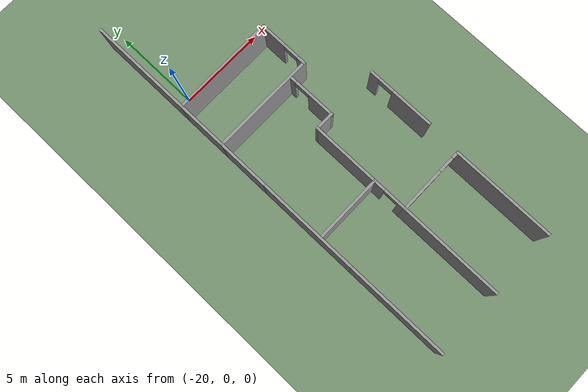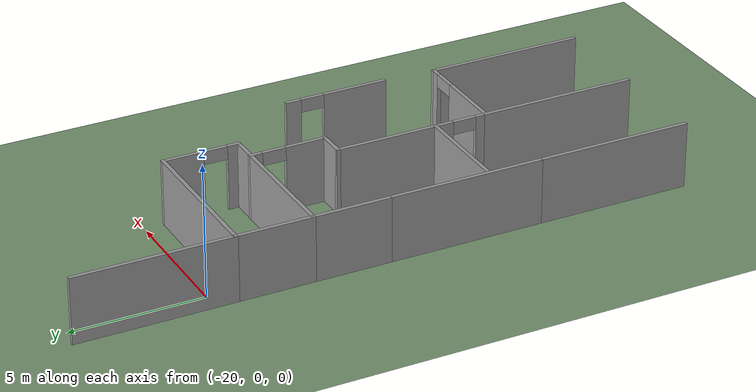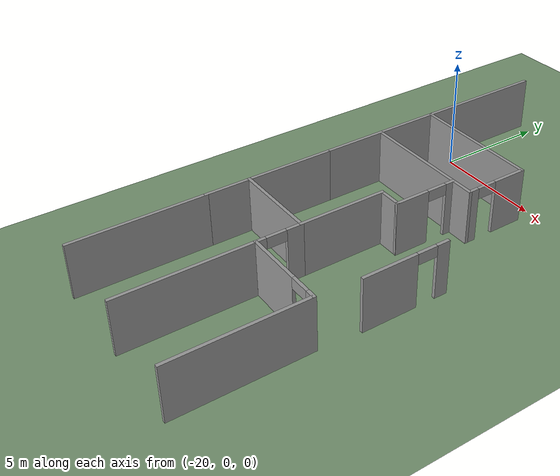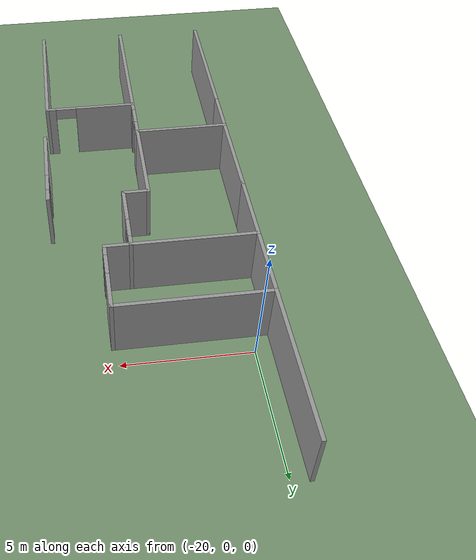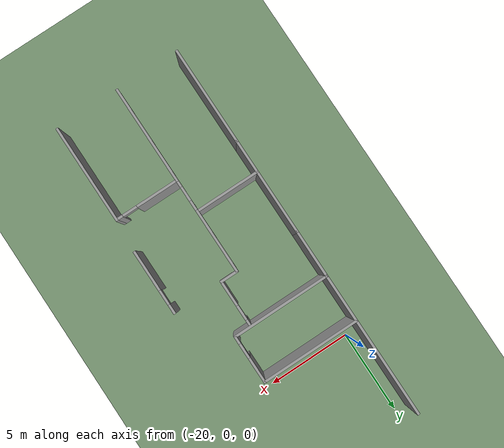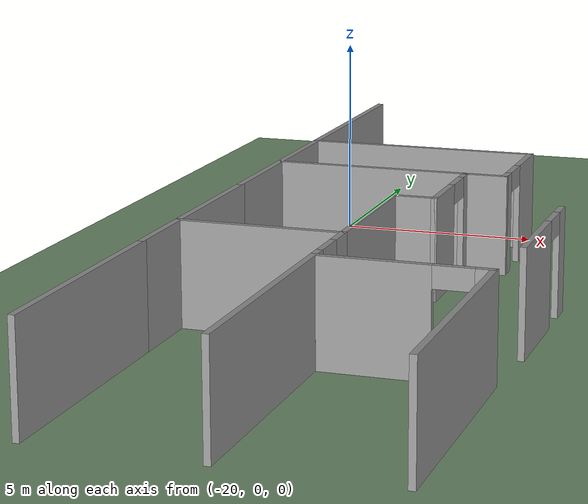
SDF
<sdf version="1.7">
 <world name="default">
  <model name="ground_plane">
   <static>1</static>
   <link name="link">
    <collision name="collision">
     <geometry><plane><normal>0 0 1</normal><size>600 600</size></plane></geometry>
     <surface>
      <contact><collide_bitmask>65535</collide_bitmask></contact>
      <friction><ode><mu>100</mu><mu2>50</mu2></ode></friction>
     </surface>
    </collision>
    <visual name="visual">
     <cast_shadows>0</cast_shadows>
     <geometry><plane><normal>0 0 1</normal><size>100 100</size></plane></geometry>
     <material><ambient>0.45 0.57 0.43 1</ambient><diffuse>0.45 0.57 0.43 1</diffuse></material>
    </visual>
   </link>
  </model>
  <model name="myhal_V3_2">
   <link name="Wall_345">
    <pose>-20.475 0 0 0 0 -1.5708</pose>
    <visual name="Wall_345_Visual">
     <pose>0 0 1.25 0 -0 0</pose>
     <geometry><box><size>6 0.15 2.5</size></box></geometry>
     <material>
      <script><uri>file://media/materials/scripts/gazebo.material</uri><name>Gazebo/Grey</name></script>
      <ambient>1 1 1 1</ambient>
      <shader type="pixel"/>
     </material>
     <meta><layer>0</layer></meta>
    </visual>
    <collision name="Wall_345_Collision">
     <pose>0 0 1.25 0 -0 0</pose>
     <geometry><box><size>6 0.15 2.5</size></box></geometry>
     <surface>
      <friction>
       <ode><mu>1</mu><mu2>1</mu2><fdir1>0 0 0</fdir1><slip1>0</slip1><slip2>0</slip2></ode>
       <torsional>
        <coefficient>1</coefficient>
        <patch_radius>0</patch_radius>
        <surface_radius>0</surface_radius>
        <use_patch_radius>1</use_patch_radius>
        <ode><slip>0</slip></ode>
       </torsional>
      </friction>
      <bounce><restitution_coefficient>0</restitution_coefficient><threshold>1e+06</threshold></bounce>
      <contact>
       <collide_without_contact>0</collide_without_contact>
       <collide_without_contact_bitmask>1</collide_without_contact_bitmask>
       <collide_bitmask>1</collide_bitmask>
       <ode>
        <soft_cfm>0</soft_cfm>
        <soft_erp>0.2</soft_erp>
        <kp>1e+13</kp>
        <kd>1</kd>
        <max_vel>0.01</max_vel>
        <min_depth>0</min_depth>
       </ode>
       <bullet>
        <split_impulse>1</split_impulse>
        <split_impulse_penetration_threshold>-0.01</split_impulse_penetration_threshold>
        <soft_cfm>0</soft_cfm>
        <soft_erp>0.2</soft_erp>
        <kp>1e+13</kp>
        <kd>1</kd>
       </bullet>
      </contact>
     </surface>
    </collision>
   </link>
   <link name="Wall_347">
    <pose>-20.475 -4.35 0 0 0 -1.5708</pose>
    <visual name="Wall_347_Visual">
     <pose>0 0 1.25 0 -0 0</pose>
     <geometry><box><size>3 0.15 2.5</size></box></geometry>
     <material>
      <script><uri>file://media/materials/scripts/gazebo.material</uri><name>Gazebo/Grey</name></script>
      <ambient>1 1 1 1</ambient>
      <shader type="pixel"/>
     </material>
     <meta><layer>0</layer></meta>
    </visual>
    <collision name="Wall_347_Collision">
     <pose>0 0 1.25 0 -0 0</pose>
     <geometry><box><size>3 0.15 2.5</size></box></geometry>
     <surface>
      <friction>
       <ode><mu>1</mu><mu2>1</mu2><fdir1>0 0 0</fdir1><slip1>0</slip1><slip2>0</slip2></ode>
       <torsional>
        <coefficient>1</coefficient>
        <patch_radius>0</patch_radius>
        <surface_radius>0</surface_radius>
        <use_patch_radius>1</use_patch_radius>
        <ode><slip>0</slip></ode>
       </torsional>
      </friction>
      <bounce><restitution_coefficient>0</restitution_coefficient><threshold>1e+06</threshold></bounce>
      <contact>
       <collide_without_contact>0</collide_without_contact>
       <collide_without_contact_bitmask>1</collide_without_contact_bitmask>
       <collide_bitmask>1</collide_bitmask>
       <ode>
        <soft_cfm>0</soft_cfm>
        <soft_erp>0.2</soft_erp>
        <kp>1e+13</kp>
        <kd>1</kd>
        <max_vel>0.01</max_vel>
        <min_depth>0</min_depth>
       </ode>
       <bullet>
        <split_impulse>1</split_impulse>
        <split_impulse_penetration_threshold>-0.01</split_impulse_penetration_threshold>
        <soft_cfm>0</soft_cfm>
        <soft_erp>0.2</soft_erp>
        <kp>1e+13</kp>
        <kd>1</kd>
       </bullet>
      </contact>
     </surface>
    </collision>
   </link>
   <link name="Wall_348">
    <pose>-20.475 -7.2 0 0 0 -1.5708</pose>
    <visual name="Wall_348_Visual">
     <pose>0 0 1.25 0 -0 0</pose>
     <geometry><box><size>3 0.15 2.5</size></box></geometry>
     <material>
      <script><uri>file://media/materials/scripts/gazebo.material</uri><name>Gazebo/Grey</name></script>
      <ambient>1 1 1 1</ambient>
      <shader type="pixel"/>
     </material>
     <meta><layer>0</layer></meta>
    </visual>
    <collision name="Wall_348_Collision">
     <pose>0 0 1.25 0 -0 0</pose>
     <geometry><box><size>3 0.15 2.5</size></box></geometry>
     <surface>
      <friction>
       <ode><mu>1</mu><mu2>1</mu2><fdir1>0 0 0</fdir1><slip1>0</slip1><slip2>0</slip2></ode>
       <torsional>
        <coefficient>1</coefficient>
        <patch_radius>0</patch_radius>
        <surface_radius>0</surface_radius>
        <use_patch_radius>1</use_patch_radius>
        <ode><slip>0</slip></ode>
       </torsional>
      </friction>
      <bounce><restitution_coefficient>0</restitution_coefficient><threshold>1e+06</threshold></bounce>
      <contact>
       <collide_without_contact>0</collide_without_contact>
       <collide_without_contact_bitmask>1</collide_without_contact_bitmask>
       <collide_bitmask>1</collide_bitmask>
       <ode>
        <soft_cfm>0</soft_cfm>
        <soft_erp>0.2</soft_erp>
        <kp>1e+13</kp>
        <kd>1</kd>
        <max_vel>0.01</max_vel>
        <min_depth>0</min_depth>
       </ode>
       <bullet>
        <split_impulse>1</split_impulse>
        <split_impulse_penetration_threshold>-0.01</split_impulse_penetration_threshold>
        <soft_cfm>0</soft_cfm>
        <soft_erp>0.2</soft_erp>
        <kp>1e+13</kp>
        <kd>1</kd>
       </bullet>
      </contact>
     </surface>
    </collision>
   </link>
   <link name="Wall_349">
    <pose>-20.475 -11.55 0 0 0 -1.5708</pose>
    <visual name="Wall_349_Visual">
     <pose>0 0 1.25 0 -0 0</pose>
     <geometry><box><size>6 0.15 2.5</size></box></geometry>
     <material>
      <script><uri>file://media/materials/scripts/gazebo.material</uri><name>Gazebo/Grey</name></script>
      <ambient>1 1 1 1</ambient>
      <shader type="pixel"/>
     </material>
     <meta><layer>0</layer></meta>
    </visual>
    <collision name="Wall_349_Collision">
     <pose>0 0 1.25 0 -0 0</pose>
     <geometry><box><size>6 0.15 2.5</size></box></geometry>
     <surface>
      <friction>
       <ode><mu>1</mu><mu2>1</mu2><fdir1>0 0 0</fdir1><slip1>0</slip1><slip2>0</slip2></ode>
       <torsional>
        <coefficient>1</coefficient>
        <patch_radius>0</patch_radius>
        <surface_radius>0</surface_radius>
        <use_patch_radius>1</use_patch_radius>
        <ode><slip>0</slip></ode>
       </torsional>
      </friction>
      <bounce><restitution_coefficient>0</restitution_coefficient><threshold>1e+06</threshold></bounce>
      <contact>
       <collide_without_contact>0</collide_without_contact>
       <collide_without_contact_bitmask>1</collide_without_contact_bitmask>
       <collide_bitmask>1</collide_bitmask>
       <ode>
        <soft_cfm>0</soft_cfm>
        <soft_erp>0.2</soft_erp>
        <kp>1e+13</kp>
        <kd>1</kd>
        <max_vel>0.01</max_vel>
        <min_depth>0</min_depth>
       </ode>
       <bullet>
        <split_impulse>1</split_impulse>
        <split_impulse_penetration_threshold>-0.01</split_impulse_penetration_threshold>
        <soft_cfm>0</soft_cfm>
        <soft_erp>0.2</soft_erp>
        <kp>1e+13</kp>
        <kd>1</kd>
       </bullet>
      </contact>
     </surface>
    </collision>
   </link>
   <link name="Wall_351">
    <pose>-20.475 -17.4 0 0 0 -1.5708</pose>
    <visual name="Wall_351_Visual">
     <pose>0 0 1.25 0 -0 0</pose>
     <geometry><box><size>6 0.15 2.5</size></box></geometry>
     <material>
      <script><uri>file://media/materials/scripts/gazebo.material</uri><name>Gazebo/Grey</name></script>
      <ambient>1 1 1 1</ambient>
      <shader type="pixel"/>
     </material>
     <meta><layer>0</layer></meta>
    </visual>
    <collision name="Wall_351_Collision">
     <pose>0 0 1.25 0 -0 0</pose>
     <geometry><box><size>6 0.15 2.5</size></box></geometry>
     <surface>
      <friction>
       <ode><mu>1</mu><mu2>1</mu2><fdir1>0 0 0</fdir1><slip1>0</slip1><slip2>0</slip2></ode>
       <torsional>
        <coefficient>1</coefficient>
        <patch_radius>0</patch_radius>
        <surface_radius>0</surface_radius>
        <use_patch_radius>1</use_patch_radius>
        <ode><slip>0</slip></ode>
       </torsional>
      </friction>
      <bounce><restitution_coefficient>0</restitution_coefficient><threshold>1e+06</threshold></bounce>
      <contact>
       <collide_without_contact>0</collide_without_contact>
       <collide_without_contact_bitmask>1</collide_without_contact_bitmask>
       <collide_bitmask>1</collide_bitmask>
       <ode>
        <soft_cfm>0</soft_cfm>
        <soft_erp>0.2</soft_erp>
        <kp>1e+13</kp>
        <kd>1</kd>
        <max_vel>0.01</max_vel>
        <min_depth>0</min_depth>
       </ode>
       <bullet>
        <split_impulse>1</split_impulse>
        <split_impulse_penetration_threshold>-0.01</split_impulse_penetration_threshold>
        <soft_cfm>0</soft_cfm>
        <soft_erp>0.2</soft_erp>
        <kp>1e+13</kp>
        <kd>1</kd>
       </bullet>
      </contact>
     </surface>
    </collision>
   </link>
   <link name="Wall_409">
    <pose>-17.55 -2.925 0 0 -0 3.14159</pose>
    <visual name="Wall_409_Visual">
     <pose>0 0 1.25 0 -0 0</pose>
     <geometry><box><size>6 0.15 2.5</size></box></geometry>
     <material>
      <script><uri>file://media/materials/scripts/gazebo.material</uri><name>Gazebo/Grey</name></script>
      <ambient>1 1 1 1</ambient>
      <shader type="pixel"/>
     </material>
     <meta><layer>0</layer></meta>
    </visual>
    <collision name="Wall_409_Collision">
     <pose>0 0 1.25 0 -0 0</pose>
     <geometry><box><size>6 0.15 2.5</size></box></geometry>
     <surface>
      <friction>
       <ode><mu>1</mu><mu2>1</mu2><fdir1>0 0 0</fdir1><slip1>0</slip1><slip2>0</slip2></ode>
       <torsional>
        <coefficient>1</coefficient>
        <patch_radius>0</patch_radius>
        <surface_radius>0</surface_radius>
        <use_patch_radius>1</use_patch_radius>
        <ode><slip>0</slip></ode>
       </torsional>
      </friction>
      <bounce><restitution_coefficient>0</restitution_coefficient><threshold>1e+06</threshold></bounce>
      <contact>
       <collide_without_contact>0</collide_without_contact>
       <collide_without_contact_bitmask>1</collide_without_contact_bitmask>
       <collide_bitmask>1</collide_bitmask>
       <ode>
        <soft_cfm>0</soft_cfm>
        <soft_erp>0.2</soft_erp>
        <kp>1e+13</kp>
        <kd>1</kd>
        <max_vel>0.01</max_vel>
        <min_depth>0</min_depth>
       </ode>
       <bullet>
        <split_impulse>1</split_impulse>
        <split_impulse_penetration_threshold>-0.01</split_impulse_penetration_threshold>
        <soft_cfm>0</soft_cfm>
        <soft_erp>0.2</soft_erp>
        <kp>1e+13</kp>
        <kd>1</kd>
       </bullet>
      </contact>
     </surface>
    </collision>
   </link>
   <link name="Wall_411">
    <pose>-14.625 -4.35 0 0 0 -1.5708</pose>
    <visual name="Wall_411_Visual_0">
     <pose>-0.710096 0 1.25 0 -0 0</pose>
     <geometry><box><size>1.57981 0.15 2.5</size></box></geometry>
     <material>
      <script><uri>file://media/materials/scripts/gazebo.material</uri><name>Gazebo/Grey</name></script>
      <ambient>1 1 1 1</ambient>
      <shader type="pixel"/>
     </material>
     <meta><layer>0</layer></meta>
    </visual>
    <visual name="Wall_411_Visual_1">
     <pose>1.2399 0 1.25 0 -0 0</pose>
     <geometry><box><size>0.520192 0.15 2.5</size></box></geometry>
     <material>
      <script><uri>file://media/materials/scripts/gazebo.material</uri><name>Gazebo/Grey</name></script>
      <ambient>1 1 1 1</ambient>
      <shader type="pixel"/>
     </material>
     <meta><layer>0</layer></meta>
    </visual>
    <visual name="Wall_411_Visual_2">
     <pose>0.529808 0 2.25 0 -0 0</pose>
     <geometry><box><size>0.9 0.15 0.5</size></box></geometry>
     <material>
      <script><uri>file://media/materials/scripts/gazebo.material</uri><name>Gazebo/Grey</name></script>
      <ambient>1 1 1 1</ambient>
      <shader type="pixel"/>
     </material>
     <meta><layer>0</layer></meta>
    </visual>
    <collision name="Wall_411_Collision_0">
     <pose>-0.710096 0 1.25 0 -0 0</pose>
     <geometry><box><size>1.57981 0.15 2.5</size></box></geometry>
     <surface>
      <friction>
       <ode><mu>1</mu><mu2>1</mu2><fdir1>0 0 0</fdir1><slip1>0</slip1><slip2>0</slip2></ode>
       <torsional>
        <coefficient>1</coefficient>
        <patch_radius>0</patch_radius>
        <surface_radius>0</surface_radius>
        <use_patch_radius>1</use_patch_radius>
        <ode><slip>0</slip></ode>
       </torsional>
      </friction>
      <bounce><restitution_coefficient>0</restitution_coefficient><threshold>1e+06</threshold></bounce>
      <contact>
       <collide_without_contact>0</collide_without_contact>
       <collide_without_contact_bitmask>1</collide_without_contact_bitmask>
       <collide_bitmask>1</collide_bitmask>
       <ode>
        <soft_cfm>0</soft_cfm>
        <soft_erp>0.2</soft_erp>
        <kp>1e+13</kp>
        <kd>1</kd>
        <max_vel>0.01</max_vel>
        <min_depth>0</min_depth>
       </ode>
       <bullet>
        <split_impulse>1</split_impulse>
        <split_impulse_penetration_threshold>-0.01</split_impulse_penetration_threshold>
        <soft_cfm>0</soft_cfm>
        <soft_erp>0.2</soft_erp>
        <kp>1e+13</kp>
        <kd>1</kd>
       </bullet>
      </contact>
     </surface>
    </collision>
    <collision name="Wall_411_Collision_1">
     <pose>1.2399 0 1.25 0 -0 0</pose>
     <geometry><box><size>0.520192 0.15 2.5</size></box></geometry>
     <surface>
      <friction>
       <ode><mu>1</mu><mu2>1</mu2><fdir1>0 0 0</fdir1><slip1>0</slip1><slip2>0</slip2></ode>
       <torsional>
        <coefficient>1</coefficient>
        <patch_radius>0</patch_radius>
        <surface_radius>0</surface_radius>
        <use_patch_radius>1</use_patch_radius>
        <ode><slip>0</slip></ode>
       </torsional>
      </friction>
      <bounce><restitution_coefficient>0</restitution_coefficient><threshold>1e+06</threshold></bounce>
      <contact>
       <collide_without_contact>0</collide_without_contact>
       <collide_without_contact_bitmask>1</collide_without_contact_bitmask>
       <collide_bitmask>1</collide_bitmask>
       <ode>
        <soft_cfm>0</soft_cfm>
        <soft_erp>0.2</soft_erp>
        <kp>1e+13</kp>
        <kd>1</kd>
        <max_vel>0.01</max_vel>
        <min_depth>0</min_depth>
       </ode>
       <bullet>
        <split_impulse>1</split_impulse>
        <split_impulse_penetration_threshold>-0.01</split_impulse_penetration_threshold>
        <soft_cfm>0</soft_cfm>
        <soft_erp>0.2</soft_erp>
        <kp>1e+13</kp>
        <kd>1</kd>
       </bullet>
      </contact>
     </surface>
    </collision>
    <collision name="Wall_411_Collision_2">
     <pose>0.529808 0 2.25 0 -0 0</pose>
     <geometry><box><size>0.9 0.15 0.5</size></box></geometry>
     <surface>
      <friction>
       <ode><mu>1</mu><mu2>1</mu2><fdir1>0 0 0</fdir1><slip1>0</slip1><slip2>0</slip2></ode>
       <torsional>
        <coefficient>1</coefficient>
        <patch_radius>0</patch_radius>
        <surface_radius>0</surface_radius>
        <use_patch_radius>1</use_patch_radius>
        <ode><slip>0</slip></ode>
       </torsional>
      </friction>
      <bounce><restitution_coefficient>0</restitution_coefficient><threshold>1e+06</threshold></bounce>
      <contact>
       <collide_without_contact>0</collide_without_contact>
       <collide_without_contact_bitmask>1</collide_without_contact_bitmask>
       <collide_bitmask>1</collide_bitmask>
       <ode>
        <soft_cfm>0</soft_cfm>
        <soft_erp>0.2</soft_erp>
        <kp>1e+13</kp>
        <kd>1</kd>
        <max_vel>0.01</max_vel>
        <min_depth>0</min_depth>
       </ode>
       <bullet>
        <split_impulse>1</split_impulse>
        <split_impulse_penetration_threshold>-0.01</split_impulse_penetration_threshold>
        <soft_cfm>0</soft_cfm>
        <soft_erp>0.2</soft_erp>
        <kp>1e+13</kp>
        <kd>1</kd>
       </bullet>
      </contact>
     </surface>
    </collision>
   </link>
   <link name="Wall_412">
    <pose>-17.55 -5.775 0 0 -0 3.14159</pose>
    <visual name="Wall_412_Visual">
     <pose>0 0 1.25 0 -0 0</pose>
     <geometry><box><size>6 0.15 2.5</size></box></geometry>
     <material>
      <script><uri>file://media/materials/scripts/gazebo.material</uri><name>Gazebo/Grey</name></script>
      <ambient>1 1 1 1</ambient>
      <shader type="pixel"/>
     </material>
     <meta><layer>0</layer></meta>
    </visual>
    <collision name="Wall_412_Collision">
     <pose>0 0 1.25 0 -0 0</pose>
     <geometry><box><size>6 0.15 2.5</size></box></geometry>
     <surface>
      <friction>
       <ode><mu>1</mu><mu2>1</mu2><fdir1>0 0 0</fdir1><slip1>0</slip1><slip2>0</slip2></ode>
       <torsional>
        <coefficient>1</coefficient>
        <patch_radius>0</patch_radius>
        <surface_radius>0</surface_radius>
        <use_patch_radius>1</use_patch_radius>
        <ode><slip>0</slip></ode>
       </torsional>
      </friction>
      <bounce><restitution_coefficient>0</restitution_coefficient><threshold>1e+06</threshold></bounce>
      <contact>
       <collide_without_contact>0</collide_without_contact>
       <collide_without_contact_bitmask>1</collide_without_contact_bitmask>
       <collide_bitmask>1</collide_bitmask>
       <ode>
        <soft_cfm>0</soft_cfm>
        <soft_erp>0.2</soft_erp>
        <kp>1e+13</kp>
        <kd>1</kd>
        <max_vel>0.01</max_vel>
        <min_depth>0</min_depth>
       </ode>
       <bullet>
        <split_impulse>1</split_impulse>
        <split_impulse_penetration_threshold>-0.01</split_impulse_penetration_threshold>
        <soft_cfm>0</soft_cfm>
        <soft_erp>0.2</soft_erp>
        <kp>1e+13</kp>
        <kd>1</kd>
       </bullet>
      </contact>
     </surface>
    </collision>
   </link>
   <link name="Wall_416">
    <pose>-15.625 -7.2 0 0 -0 1.5708</pose>
    <visual name="Wall_416_Visual_0">
     <pose>-0.698731 0 1.25 0 -0 0</pose>
     <geometry><box><size>1.60254 0.15 2.5</size></box></geometry>
     <material>
      <script><uri>file://media/materials/scripts/gazebo.material</uri><name>Gazebo/Grey</name></script>
      <ambient>1 1 1 1</ambient>
      <shader type="pixel"/>
     </material>
     <meta><layer>0</layer></meta>
    </visual>
    <visual name="Wall_416_Visual_1">
     <pose>1.25127 0 1.25 0 -0 0</pose>
     <geometry><box><size>0.497462 0.15 2.5</size></box></geometry>
     <material>
      <script><uri>file://media/materials/scripts/gazebo.material</uri><name>Gazebo/Grey</name></script>
      <ambient>1 1 1 1</ambient>
      <shader type="pixel"/>
     </material>
     <meta><layer>0</layer></meta>
    </visual>
    <visual name="Wall_416_Visual_2">
     <pose>0.552538 0 2.25 0 -0 0</pose>
     <geometry><box><size>0.9 0.15 0.5</size></box></geometry>
     <material>
      <script><uri>file://media/materials/scripts/gazebo.material</uri><name>Gazebo/Grey</name></script>
      <ambient>1 1 1 1</ambient>
      <shader type="pixel"/>
     </material>
     <meta><layer>0</layer></meta>
    </visual>
    <collision name="Wall_416_Collision_0">
     <pose>-0.698731 0 1.25 0 -0 0</pose>
     <geometry><box><size>1.60254 0.15 2.5</size></box></geometry>
     <surface>
      <friction>
       <ode><mu>1</mu><mu2>1</mu2><fdir1>0 0 0</fdir1><slip1>0</slip1><slip2>0</slip2></ode>
       <torsional>
        <coefficient>1</coefficient>
        <patch_radius>0</patch_radius>
        <surface_radius>0</surface_radius>
        <use_patch_radius>1</use_patch_radius>
        <ode><slip>0</slip></ode>
       </torsional>
      </friction>
      <bounce><restitution_coefficient>0</restitution_coefficient><threshold>1e+06</threshold></bounce>
      <contact>
       <collide_without_contact>0</collide_without_contact>
       <collide_without_contact_bitmask>1</collide_without_contact_bitmask>
       <collide_bitmask>1</collide_bitmask>
       <ode>
        <soft_cfm>0</soft_cfm>
        <soft_erp>0.2</soft_erp>
        <kp>1e+13</kp>
        <kd>1</kd>
        <max_vel>0.01</max_vel>
        <min_depth>0</min_depth>
       </ode>
       <bullet>
        <split_impulse>1</split_impulse>
        <split_impulse_penetration_threshold>-0.01</split_impulse_penetration_threshold>
        <soft_cfm>0</soft_cfm>
        <soft_erp>0.2</soft_erp>
        <kp>1e+13</kp>
        <kd>1</kd>
       </bullet>
      </contact>
     </surface>
    </collision>
    <collision name="Wall_416_Collision_1">
     <pose>1.25127 0 1.25 0 -0 0</pose>
     <geometry><box><size>0.497462 0.15 2.5</size></box></geometry>
     <surface>
      <friction>
       <ode><mu>1</mu><mu2>1</mu2><fdir1>0 0 0</fdir1><slip1>0</slip1><slip2>0</slip2></ode>
       <torsional>
        <coefficient>1</coefficient>
        <patch_radius>0</patch_radius>
        <surface_radius>0</surface_radius>
        <use_patch_radius>1</use_patch_radius>
        <ode><slip>0</slip></ode>
       </torsional>
      </friction>
      <bounce><restitution_coefficient>0</restitution_coefficient><threshold>1e+06</threshold></bounce>
      <contact>
       <collide_without_contact>0</collide_without_contact>
       <collide_without_contact_bitmask>1</collide_without_contact_bitmask>
       <collide_bitmask>1</collide_bitmask>
       <ode>
        <soft_cfm>0</soft_cfm>
        <soft_erp>0.2</soft_erp>
        <kp>1e+13</kp>
        <kd>1</kd>
        <max_vel>0.01</max_vel>
        <min_depth>0</min_depth>
       </ode>
       <bullet>
        <split_impulse>1</split_impulse>
        <split_impulse_penetration_threshold>-0.01</split_impulse_penetration_threshold>
        <soft_cfm>0</soft_cfm>
        <soft_erp>0.2</soft_erp>
        <kp>1e+13</kp>
        <kd>1</kd>
       </bullet>
      </contact>
     </surface>
    </collision>
    <collision name="Wall_416_Collision_2">
     <pose>0.552538 0 2.25 0 -0 0</pose>
     <geometry><box><size>0.9 0.15 0.5</size></box></geometry>
     <surface>
      <friction>
       <ode><mu>1</mu><mu2>1</mu2><fdir1>0 0 0</fdir1><slip1>0</slip1><slip2>0</slip2></ode>
       <torsional>
        <coefficient>1</coefficient>
        <patch_radius>0</patch_radius>
        <surface_radius>0</surface_radius>
        <use_patch_radius>1</use_patch_radius>
        <ode><slip>0</slip></ode>
       </torsional>
      </friction>
      <bounce><restitution_coefficient>0</restitution_coefficient><threshold>1e+06</threshold></bounce>
      <contact>
       <collide_without_contact>0</collide_without_contact>
       <collide_without_contact_bitmask>1</collide_without_contact_bitmask>
       <collide_bitmask>1</collide_bitmask>
       <ode>
        <soft_cfm>0</soft_cfm>
        <soft_erp>0.2</soft_erp>
        <kp>1e+13</kp>
        <kd>1</kd>
        <max_vel>0.01</max_vel>
        <min_depth>0</min_depth>
       </ode>
       <bullet>
        <split_impulse>1</split_impulse>
        <split_impulse_penetration_threshold>-0.01</split_impulse_penetration_threshold>
        <soft_cfm>0</soft_cfm>
        <soft_erp>0.2</soft_erp>
        <kp>1e+13</kp>
        <kd>1</kd>
       </bullet>
      </contact>
     </surface>
    </collision>
   </link>
   <link name="Wall_422">
    <pose>-16.125 -8.625 0 0 -0 0</pose>
    <visual name="Wall_422_Visual">
     <pose>0 0 1.25 0 -0 0</pose>
     <geometry><box><size>1.15 0.15 2.5</size></box></geometry>
     <material>
      <script><uri>file://media/materials/scripts/gazebo.material</uri><name>Gazebo/Grey</name></script>
      <ambient>1 1 1 1</ambient>
      <shader type="pixel"/>
     </material>
     <meta><layer>0</layer></meta>
    </visual>
    <collision name="Wall_422_Collision">
     <pose>0 0 1.25 0 -0 0</pose>
     <geometry><box><size>1.15 0.15 2.5</size></box></geometry>
     <surface>
      <friction>
       <ode><mu>1</mu><mu2>1</mu2><fdir1>0 0 0</fdir1><slip1>0</slip1><slip2>0</slip2></ode>
       <torsional>
        <coefficient>1</coefficient>
        <patch_radius>0</patch_radius>
        <surface_radius>0</surface_radius>
        <use_patch_radius>1</use_patch_radius>
        <ode><slip>0</slip></ode>
       </torsional>
      </friction>
      <bounce><restitution_coefficient>0</restitution_coefficient><threshold>1e+06</threshold></bounce>
      <contact>
       <collide_without_contact>0</collide_without_contact>
       <collide_without_contact_bitmask>1</collide_without_contact_bitmask>
       <collide_bitmask>1</collide_bitmask>
       <ode>
        <soft_cfm>0</soft_cfm>
        <soft_erp>0.2</soft_erp>
        <kp>1e+13</kp>
        <kd>1</kd>
        <max_vel>0.01</max_vel>
        <min_depth>0</min_depth>
       </ode>
       <bullet>
        <split_impulse>1</split_impulse>
        <split_impulse_penetration_threshold>-0.01</split_impulse_penetration_threshold>
        <soft_cfm>0</soft_cfm>
        <soft_erp>0.2</soft_erp>
        <kp>1e+13</kp>
        <kd>1</kd>
       </bullet>
      </contact>
     </surface>
    </collision>
   </link>
   <link name="Wall_425">
    <pose>-16.6251 -17.3996 0 0 -0 1.5708</pose>
    <visual name="Wall_425_Visual">
     <pose>0 0 1.25 0 -0 0</pose>
     <geometry><box><size>6 0.15 2.5</size></box></geometry>
     <material>
      <script><uri>file://media/materials/scripts/gazebo.material</uri><name>Gazebo/Grey</name></script>
      <ambient>1 1 1 1</ambient>
      <shader type="pixel"/>
     </material>
     <meta><layer>0</layer></meta>
    </visual>
    <collision name="Wall_425_Collision">
     <pose>0 0 1.25 0 -0 0</pose>
     <geometry><box><size>6 0.15 2.5</size></box></geometry>
     <surface>
      <friction>
       <ode><mu>1</mu><mu2>1</mu2><fdir1>0 0 0</fdir1><slip1>0</slip1><slip2>0</slip2></ode>
       <torsional>
        <coefficient>1</coefficient>
        <patch_radius>0</patch_radius>
        <surface_radius>0</surface_radius>
        <use_patch_radius>1</use_patch_radius>
        <ode><slip>0</slip></ode>
       </torsional>
      </friction>
      <bounce><restitution_coefficient>0</restitution_coefficient><threshold>1e+06</threshold></bounce>
      <contact>
       <collide_without_contact>0</collide_without_contact>
       <collide_without_contact_bitmask>1</collide_without_contact_bitmask>
       <collide_bitmask>1</collide_bitmask>
       <ode>
        <soft_cfm>0</soft_cfm>
        <soft_erp>0.2</soft_erp>
        <kp>1e+13</kp>
        <kd>1</kd>
        <max_vel>0.01</max_vel>
        <min_depth>0</min_depth>
       </ode>
       <bullet>
        <split_impulse>1</split_impulse>
        <split_impulse_penetration_threshold>-0.01</split_impulse_penetration_threshold>
        <soft_cfm>0</soft_cfm>
        <soft_erp>0.2</soft_erp>
        <kp>1e+13</kp>
        <kd>1</kd>
       </bullet>
      </contact>
     </surface>
    </collision>
   </link>
   <link name="Wall_426">
    <pose>-14.7 -14.4748 0 0 0 -0.00011</pose>
    <visual name="Wall_426_Visual_0">
     <pose>-0.680867 0 1.25 0 -0 0</pose>
     <geometry><box><size>2.63827 0.15 2.5</size></box></geometry>
     <material>
      <script><uri>file://media/materials/scripts/gazebo.material</uri><name>Gazebo/Grey</name></script>
      <ambient>1 1 1 1</ambient>
      <shader type="pixel"/>
     </material>
     <meta><layer>0</layer></meta>
    </visual>
    <visual name="Wall_426_Visual_1">
     <pose>1.76913 0 1.25 0 -0 0</pose>
     <geometry><box><size>0.461734 0.15 2.5</size></box></geometry>
     <material>
      <script><uri>file://media/materials/scripts/gazebo.material</uri><name>Gazebo/Grey</name></script>
      <ambient>1 1 1 1</ambient>
      <shader type="pixel"/>
     </material>
     <meta><layer>0</layer></meta>
    </visual>
    <visual name="Wall_426_Visual_2">
     <pose>1.08827 0 2.25 0 -0 0</pose>
     <geometry><box><size>0.9 0.15 0.5</size></box></geometry>
     <material>
      <script><uri>file://media/materials/scripts/gazebo.material</uri><name>Gazebo/Grey</name></script>
      <ambient>1 1 1 1</ambient>
      <shader type="pixel"/>
     </material>
     <meta><layer>0</layer></meta>
    </visual>
    <collision name="Wall_426_Collision_0">
     <pose>-0.680867 0 1.25 0 -0 0</pose>
     <geometry><box><size>2.63827 0.15 2.5</size></box></geometry>
     <surface>
      <friction>
       <ode><mu>1</mu><mu2>1</mu2><fdir1>0 0 0</fdir1><slip1>0</slip1><slip2>0</slip2></ode>
       <torsional>
        <coefficient>1</coefficient>
        <patch_radius>0</patch_radius>
        <surface_radius>0</surface_radius>
        <use_patch_radius>1</use_patch_radius>
        <ode><slip>0</slip></ode>
       </torsional>
      </friction>
      <bounce><restitution_coefficient>0</restitution_coefficient><threshold>1e+06</threshold></bounce>
      <contact>
       <collide_without_contact>0</collide_without_contact>
       <collide_without_contact_bitmask>1</collide_without_contact_bitmask>
       <collide_bitmask>1</collide_bitmask>
       <ode>
        <soft_cfm>0</soft_cfm>
        <soft_erp>0.2</soft_erp>
        <kp>1e+13</kp>
        <kd>1</kd>
        <max_vel>0.01</max_vel>
        <min_depth>0</min_depth>
       </ode>
       <bullet>
        <split_impulse>1</split_impulse>
        <split_impulse_penetration_threshold>-0.01</split_impulse_penetration_threshold>
        <soft_cfm>0</soft_cfm>
        <soft_erp>0.2</soft_erp>
        <kp>1e+13</kp>
        <kd>1</kd>
       </bullet>
      </contact>
     </surface>
    </collision>
    <collision name="Wall_426_Collision_1">
     <pose>1.76913 0 1.25 0 -0 0</pose>
     <geometry><box><size>0.461734 0.15 2.5</size></box></geometry>
     <surface>
      <friction>
       <ode><mu>1</mu><mu2>1</mu2><fdir1>0 0 0</fdir1><slip1>0</slip1><slip2>0</slip2></ode>
       <torsional>
        <coefficient>1</coefficient>
        <patch_radius>0</patch_radius>
        <surface_radius>0</surface_radius>
        <use_patch_radius>1</use_patch_radius>
        <ode><slip>0</slip></ode>
       </torsional>
      </friction>
      <bounce><restitution_coefficient>0</restitution_coefficient><threshold>1e+06</threshold></bounce>
      <contact>
       <collide_without_contact>0</collide_without_contact>
       <collide_without_contact_bitmask>1</collide_without_contact_bitmask>
       <collide_bitmask>1</collide_bitmask>
       <ode>
        <soft_cfm>0</soft_cfm>
        <soft_erp>0.2</soft_erp>
        <kp>1e+13</kp>
        <kd>1</kd>
        <max_vel>0.01</max_vel>
        <min_depth>0</min_depth>
       </ode>
       <bullet>
        <split_impulse>1</split_impulse>
        <split_impulse_penetration_threshold>-0.01</split_impulse_penetration_threshold>
        <soft_cfm>0</soft_cfm>
        <soft_erp>0.2</soft_erp>
        <kp>1e+13</kp>
        <kd>1</kd>
       </bullet>
      </contact>
     </surface>
    </collision>
    <collision name="Wall_426_Collision_2">
     <pose>1.08827 0 2.25 0 -0 0</pose>
     <geometry><box><size>0.9 0.15 0.5</size></box></geometry>
     <surface>
      <friction>
       <ode><mu>1</mu><mu2>1</mu2><fdir1>0 0 0</fdir1><slip1>0</slip1><slip2>0</slip2></ode>
       <torsional>
        <coefficient>1</coefficient>
        <patch_radius>0</patch_radius>
        <surface_radius>0</surface_radius>
        <use_patch_radius>1</use_patch_radius>
        <ode><slip>0</slip></ode>
       </torsional>
      </friction>
      <bounce><restitution_coefficient>0</restitution_coefficient><threshold>1e+06</threshold></bounce>
      <contact>
       <collide_without_contact>0</collide_without_contact>
       <collide_without_contact_bitmask>1</collide_without_contact_bitmask>
       <collide_bitmask>1</collide_bitmask>
       <ode>
        <soft_cfm>0</soft_cfm>
        <soft_erp>0.2</soft_erp>
        <kp>1e+13</kp>
        <kd>1</kd>
        <max_vel>0.01</max_vel>
        <min_depth>0</min_depth>
       </ode>
       <bullet>
        <split_impulse>1</split_impulse>
        <split_impulse_penetration_threshold>-0.01</split_impulse_penetration_threshold>
        <soft_cfm>0</soft_cfm>
        <soft_erp>0.2</soft_erp>
        <kp>1e+13</kp>
        <kd>1</kd>
       </bullet>
      </contact>
     </surface>
    </collision>
   </link>
   <link name="Wall_427">
    <pose>-12.775 -17.4 0 0 0 -1.5708</pose>
    <visual name="Wall_427_Visual">
     <pose>0 0 1.25 0 -0 0</pose>
     <geometry><box><size>6 0.15 2.5</size></box></geometry>
     <material>
      <script><uri>file://media/materials/scripts/gazebo.material</uri><name>Gazebo/Grey</name></script>
      <ambient>1 1 1 1</ambient>
      <shader type="pixel"/>
     </material>
     <meta><layer>0</layer></meta>
    </visual>
    <collision name="Wall_427_Collision">
     <pose>0 0 1.25 0 -0 0</pose>
     <geometry><box><size>6 0.15 2.5</size></box></geometry>
     <surface>
      <friction>
       <ode><mu>1</mu><mu2>1</mu2><fdir1>0 0 0</fdir1><slip1>0</slip1><slip2>0</slip2></ode>
       <torsional>
        <coefficient>1</coefficient>
        <patch_radius>0</patch_radius>
        <surface_radius>0</surface_radius>
        <use_patch_radius>1</use_patch_radius>
        <ode><slip>0</slip></ode>
       </torsional>
      </friction>
      <bounce><restitution_coefficient>0</restitution_coefficient><threshold>1e+06</threshold></bounce>
      <contact>
       <collide_without_contact>0</collide_without_contact>
       <collide_without_contact_bitmask>1</collide_without_contact_bitmask>
       <collide_bitmask>1</collide_bitmask>
       <ode>
        <soft_cfm>0</soft_cfm>
        <soft_erp>0.2</soft_erp>
        <kp>1e+13</kp>
        <kd>1</kd>
        <max_vel>0.01</max_vel>
        <min_depth>0</min_depth>
       </ode>
       <bullet>
        <split_impulse>1</split_impulse>
        <split_impulse_penetration_threshold>-0.01</split_impulse_penetration_threshold>
        <soft_cfm>0</soft_cfm>
        <soft_erp>0.2</soft_erp>
        <kp>1e+13</kp>
        <kd>1</kd>
       </bullet>
      </contact>
     </surface>
    </collision>
   </link>
   <link name="Wall_451">
    <pose>-16.625 -10.55 0 0 0 -1.5708</pose>
    <visual name="Wall_451_Visual">
     <pose>0 0 1.25 0 -0 0</pose>
     <geometry><box><size>4 0.15 2.5</size></box></geometry>
     <material>
      <script><uri>file://media/materials/scripts/gazebo.material</uri><name>Gazebo/Grey</name></script>
      <ambient>1 1 1 1</ambient>
      <shader type="pixel"/>
     </material>
     <meta><layer>0</layer></meta>
    </visual>
    <collision name="Wall_451_Collision">
     <pose>0 0 1.25 0 -0 0</pose>
     <geometry><box><size>4 0.15 2.5</size></box></geometry>
     <surface>
      <friction>
       <ode><mu>1</mu><mu2>1</mu2><fdir1>0 0 0</fdir1><slip1>0</slip1><slip2>0</slip2></ode>
       <torsional>
        <coefficient>1</coefficient>
        <patch_radius>0</patch_radius>
        <surface_radius>0</surface_radius>
        <use_patch_radius>1</use_patch_radius>
        <ode><slip>0</slip></ode>
       </torsional>
      </friction>
      <bounce><restitution_coefficient>0</restitution_coefficient><threshold>1e+06</threshold></bounce>
      <contact>
       <collide_without_contact>0</collide_without_contact>
       <collide_without_contact_bitmask>1</collide_without_contact_bitmask>
       <collide_bitmask>1</collide_bitmask>
       <ode>
        <soft_cfm>0</soft_cfm>
        <soft_erp>0.2</soft_erp>
        <kp>1e+13</kp>
        <kd>1</kd>
        <max_vel>0.01</max_vel>
        <min_depth>0</min_depth>
       </ode>
       <bullet>
        <split_impulse>1</split_impulse>
        <split_impulse_penetration_threshold>-0.01</split_impulse_penetration_threshold>
        <soft_cfm>0</soft_cfm>
        <soft_erp>0.2</soft_erp>
        <kp>1e+13</kp>
        <kd>1</kd>
       </bullet>
      </contact>
     </surface>
    </collision>
   </link>
   <link name="Wall_452">
    <pose>-18.55 -12.475 0 0 -0 3.14159</pose>
    <visual name="Wall_452_Visual">
     <pose>0 0 1.25 0 -0 0</pose>
     <geometry><box><size>4 0.15 2.5</size></box></geometry>
     <material>
      <script><uri>file://media/materials/scripts/gazebo.material</uri><name>Gazebo/Grey</name></script>
      <ambient>1 1 1 1</ambient>
      <shader type="pixel"/>
     </material>
     <meta><layer>0</layer></meta>
    </visual>
    <collision name="Wall_452_Collision">
     <pose>0 0 1.25 0 -0 0</pose>
     <geometry><box><size>4 0.15 2.5</size></box></geometry>
     <surface>
      <friction>
       <ode><mu>1</mu><mu2>1</mu2><fdir1>0 0 0</fdir1><slip1>0</slip1><slip2>0</slip2></ode>
       <torsional>
        <coefficient>1</coefficient>
        <patch_radius>0</patch_radius>
        <surface_radius>0</surface_radius>
        <use_patch_radius>1</use_patch_radius>
        <ode><slip>0</slip></ode>
       </torsional>
      </friction>
      <bounce><restitution_coefficient>0</restitution_coefficient><threshold>1e+06</threshold></bounce>
      <contact>
       <collide_without_contact>0</collide_without_contact>
       <collide_without_contact_bitmask>1</collide_without_contact_bitmask>
       <collide_bitmask>1</collide_bitmask>
       <ode>
        <soft_cfm>0</soft_cfm>
        <soft_erp>0.2</soft_erp>
        <kp>1e+13</kp>
        <kd>1</kd>
        <max_vel>0.01</max_vel>
        <min_depth>0</min_depth>
       </ode>
       <bullet>
        <split_impulse>1</split_impulse>
        <split_impulse_penetration_threshold>-0.01</split_impulse_penetration_threshold>
        <soft_cfm>0</soft_cfm>
        <soft_erp>0.2</soft_erp>
        <kp>1e+13</kp>
        <kd>1</kd>
       </bullet>
      </contact>
     </surface>
    </collision>
   </link>
   <link name="Wall_454">
    <pose>-16.625 -13.4748 0 0 0 -1.57083</pose>
    <visual name="Wall_454_Visual_0">
     <pose>-0.701103 0 1.25 0 -0 0</pose>
     <geometry><box><size>0.747794 0.15 2.5</size></box></geometry>
     <material>
      <script><uri>file://media/materials/scripts/gazebo.material</uri><name>Gazebo/Grey</name></script>
      <ambient>1 1 1 1</ambient>
      <shader type="pixel"/>
     </material>
     <meta><layer>0</layer></meta>
    </visual>
    <visual name="Wall_454_Visual_1">
     <pose>0.823897 0 1.25 0 -0 0</pose>
     <geometry><box><size>0.502206 0.15 2.5</size></box></geometry>
     <material>
      <script><uri>file://media/materials/scripts/gazebo.material</uri><name>Gazebo/Grey</name></script>
      <ambient>1 1 1 1</ambient>
      <shader type="pixel"/>
     </material>
     <meta><layer>0</layer></meta>
    </visual>
    <visual name="Wall_454_Visual_2">
     <pose>0.122794 0 2.25 0 -0 0</pose>
     <geometry><box><size>0.9 0.15 0.5</size></box></geometry>
     <material>
      <script><uri>file://media/materials/scripts/gazebo.material</uri><name>Gazebo/Grey</name></script>
      <ambient>1 1 1 1</ambient>
      <shader type="pixel"/>
     </material>
     <meta><layer>0</layer></meta>
    </visual>
    <collision name="Wall_454_Collision_0">
     <pose>-0.701103 0 1.25 0 -0 0</pose>
     <geometry><box><size>0.747794 0.15 2.5</size></box></geometry>
     <surface>
      <friction>
       <ode><mu>1</mu><mu2>1</mu2><fdir1>0 0 0</fdir1><slip1>0</slip1><slip2>0</slip2></ode>
       <torsional>
        <coefficient>1</coefficient>
        <patch_radius>0</patch_radius>
        <surface_radius>0</surface_radius>
        <use_patch_radius>1</use_patch_radius>
        <ode><slip>0</slip></ode>
       </torsional>
      </friction>
      <bounce><restitution_coefficient>0</restitution_coefficient><threshold>1e+06</threshold></bounce>
      <contact>
       <collide_without_contact>0</collide_without_contact>
       <collide_without_contact_bitmask>1</collide_without_contact_bitmask>
       <collide_bitmask>1</collide_bitmask>
       <ode>
        <soft_cfm>0</soft_cfm>
        <soft_erp>0.2</soft_erp>
        <kp>1e+13</kp>
        <kd>1</kd>
        <max_vel>0.01</max_vel>
        <min_depth>0</min_depth>
       </ode>
       <bullet>
        <split_impulse>1</split_impulse>
        <split_impulse_penetration_threshold>-0.01</split_impulse_penetration_threshold>
        <soft_cfm>0</soft_cfm>
        <soft_erp>0.2</soft_erp>
        <kp>1e+13</kp>
        <kd>1</kd>
       </bullet>
      </contact>
     </surface>
    </collision>
    <collision name="Wall_454_Collision_1">
     <pose>0.823897 0 1.25 0 -0 0</pose>
     <geometry><box><size>0.502206 0.15 2.5</size></box></geometry>
     <surface>
      <friction>
       <ode><mu>1</mu><mu2>1</mu2><fdir1>0 0 0</fdir1><slip1>0</slip1><slip2>0</slip2></ode>
       <torsional>
        <coefficient>1</coefficient>
        <patch_radius>0</patch_radius>
        <surface_radius>0</surface_radius>
        <use_patch_radius>1</use_patch_radius>
        <ode><slip>0</slip></ode>
       </torsional>
      </friction>
      <bounce><restitution_coefficient>0</restitution_coefficient><threshold>1e+06</threshold></bounce>
      <contact>
       <collide_without_contact>0</collide_without_contact>
       <collide_without_contact_bitmask>1</collide_without_contact_bitmask>
       <collide_bitmask>1</collide_bitmask>
       <ode>
        <soft_cfm>0</soft_cfm>
        <soft_erp>0.2</soft_erp>
        <kp>1e+13</kp>
        <kd>1</kd>
        <max_vel>0.01</max_vel>
        <min_depth>0</min_depth>
       </ode>
       <bullet>
        <split_impulse>1</split_impulse>
        <split_impulse_penetration_threshold>-0.01</split_impulse_penetration_threshold>
        <soft_cfm>0</soft_cfm>
        <soft_erp>0.2</soft_erp>
        <kp>1e+13</kp>
        <kd>1</kd>
       </bullet>
      </contact>
     </surface>
    </collision>
    <collision name="Wall_454_Collision_2">
     <pose>0.122794 0 2.25 0 -0 0</pose>
     <geometry><box><size>0.9 0.15 0.5</size></box></geometry>
     <surface>
      <friction>
       <ode><mu>1</mu><mu2>1</mu2><fdir1>0 0 0</fdir1><slip1>0</slip1><slip2>0</slip2></ode>
       <torsional>
        <coefficient>1</coefficient>
        <patch_radius>0</patch_radius>
        <surface_radius>0</surface_radius>
        <use_patch_radius>1</use_patch_radius>
        <ode><slip>0</slip></ode>
       </torsional>
      </friction>
      <bounce><restitution_coefficient>0</restitution_coefficient><threshold>1e+06</threshold></bounce>
      <contact>
       <collide_without_contact>0</collide_without_contact>
       <collide_without_contact_bitmask>1</collide_without_contact_bitmask>
       <collide_bitmask>1</collide_bitmask>
       <ode>
        <soft_cfm>0</soft_cfm>
        <soft_erp>0.2</soft_erp>
        <kp>1e+13</kp>
        <kd>1</kd>
        <max_vel>0.01</max_vel>
        <min_depth>0</min_depth>
       </ode>
       <bullet>
        <split_impulse>1</split_impulse>
        <split_impulse_penetration_threshold>-0.01</split_impulse_penetration_threshold>
        <soft_cfm>0</soft_cfm>
        <soft_erp>0.2</soft_erp>
        <kp>1e+13</kp>
        <kd>1</kd>
       </bullet>
      </contact>
     </surface>
    </collision>
   </link>
   <link name="Wall_460">
    <pose>-12.625 -10.55 0 0 0 -1.5708</pose>
    <visual name="Wall_460_Visual_0">
     <pose>-1.70089 0 1.25 0 -0 0</pose>
     <geometry><box><size>0.598217 0.15 2.5</size></box></geometry>
     <material>
      <script><uri>file://media/materials/scripts/gazebo.material</uri><name>Gazebo/Grey</name></script>
      <ambient>1 1 1 1</ambient>
      <shader type="pixel"/>
     </material>
     <meta><layer>0</layer></meta>
    </visual>
    <visual name="Wall_460_Visual_1">
     <pose>0.749108 0 1.25 0 -0 0</pose>
     <geometry><box><size>2.50178 0.15 2.5</size></box></geometry>
     <material>
      <script><uri>file://media/materials/scripts/gazebo.material</uri><name>Gazebo/Grey</name></script>
      <ambient>1 1 1 1</ambient>
      <shader type="pixel"/>
     </material>
     <meta><layer>0</layer></meta>
    </visual>
    <visual name="Wall_460_Visual_2">
     <pose>-0.951783 0 2.25 0 -0 0</pose>
     <geometry><box><size>0.9 0.15 0.5</size></box></geometry>
     <material>
      <script><uri>file://media/materials/scripts/gazebo.material</uri><name>Gazebo/Grey</name></script>
      <ambient>1 1 1 1</ambient>
      <shader type="pixel"/>
     </material>
     <meta><layer>0</layer></meta>
    </visual>
    <collision name="Wall_460_Collision_0">
     <pose>-1.70089 0 1.25 0 -0 0</pose>
     <geometry><box><size>0.598217 0.15 2.5</size></box></geometry>
     <surface>
      <friction>
       <ode><mu>1</mu><mu2>1</mu2><fdir1>0 0 0</fdir1><slip1>0</slip1><slip2>0</slip2></ode>
       <torsional>
        <coefficient>1</coefficient>
        <patch_radius>0</patch_radius>
        <surface_radius>0</surface_radius>
        <use_patch_radius>1</use_patch_radius>
        <ode><slip>0</slip></ode>
       </torsional>
      </friction>
      <bounce><restitution_coefficient>0</restitution_coefficient><threshold>1e+06</threshold></bounce>
      <contact>
       <collide_without_contact>0</collide_without_contact>
       <collide_without_contact_bitmask>1</collide_without_contact_bitmask>
       <collide_bitmask>1</collide_bitmask>
       <ode>
        <soft_cfm>0</soft_cfm>
        <soft_erp>0.2</soft_erp>
        <kp>1e+13</kp>
        <kd>1</kd>
        <max_vel>0.01</max_vel>
        <min_depth>0</min_depth>
       </ode>
       <bullet>
        <split_impulse>1</split_impulse>
        <split_impulse_penetration_threshold>-0.01</split_impulse_penetration_threshold>
        <soft_cfm>0</soft_cfm>
        <soft_erp>0.2</soft_erp>
        <kp>1e+13</kp>
        <kd>1</kd>
       </bullet>
      </contact>
     </surface>
    </collision>
    <collision name="Wall_460_Collision_1">
     <pose>0.749108 0 1.25 0 -0 0</pose>
     <geometry><box><size>2.50178 0.15 2.5</size></box></geometry>
     <surface>
      <friction>
       <ode><mu>1</mu><mu2>1</mu2><fdir1>0 0 0</fdir1><slip1>0</slip1><slip2>0</slip2></ode>
       <torsional>
        <coefficient>1</coefficient>
        <patch_radius>0</patch_radius>
        <surface_radius>0</surface_radius>
        <use_patch_radius>1</use_patch_radius>
        <ode><slip>0</slip></ode>
       </torsional>
      </friction>
      <bounce><restitution_coefficient>0</restitution_coefficient><threshold>1e+06</threshold></bounce>
      <contact>
       <collide_without_contact>0</collide_without_contact>
       <collide_without_contact_bitmask>1</collide_without_contact_bitmask>
       <collide_bitmask>1</collide_bitmask>
       <ode>
        <soft_cfm>0</soft_cfm>
        <soft_erp>0.2</soft_erp>
        <kp>1e+13</kp>
        <kd>1</kd>
        <max_vel>0.01</max_vel>
        <min_depth>0</min_depth>
       </ode>
       <bullet>
        <split_impulse>1</split_impulse>
        <split_impulse_penetration_threshold>-0.01</split_impulse_penetration_threshold>
        <soft_cfm>0</soft_cfm>
        <soft_erp>0.2</soft_erp>
        <kp>1e+13</kp>
        <kd>1</kd>
       </bullet>
      </contact>
     </surface>
    </collision>
    <collision name="Wall_460_Collision_2">
     <pose>-0.951783 0 2.25 0 -0 0</pose>
     <geometry><box><size>0.9 0.15 0.5</size></box></geometry>
     <surface>
      <friction>
       <ode><mu>1</mu><mu2>1</mu2><fdir1>0 0 0</fdir1><slip1>0</slip1><slip2>0</slip2></ode>
       <torsional>
        <coefficient>1</coefficient>
        <patch_radius>0</patch_radius>
        <surface_radius>0</surface_radius>
        <use_patch_radius>1</use_patch_radius>
        <ode><slip>0</slip></ode>
       </torsional>
      </friction>
      <bounce><restitution_coefficient>0</restitution_coefficient><threshold>1e+06</threshold></bounce>
      <contact>
       <collide_without_contact>0</collide_without_contact>
       <collide_without_contact_bitmask>1</collide_without_contact_bitmask>
       <collide_bitmask>1</collide_bitmask>
       <ode>
        <soft_cfm>0</soft_cfm>
        <soft_erp>0.2</soft_erp>
        <kp>1e+13</kp>
        <kd>1</kd>
        <max_vel>0.01</max_vel>
        <min_depth>0</min_depth>
       </ode>
       <bullet>
        <split_impulse>1</split_impulse>
        <split_impulse_penetration_threshold>-0.01</split_impulse_penetration_threshold>
        <soft_cfm>0</soft_cfm>
        <soft_erp>0.2</soft_erp>
        <kp>1e+13</kp>
        <kd>1</kd>
       </bullet>
      </contact>
     </surface>
    </collision>
   </link>
   <static>1</static>
   <pose>-0.2201 2.1339 0 0 -0 0</pose>
  </model>
 </world>
</sdf>
